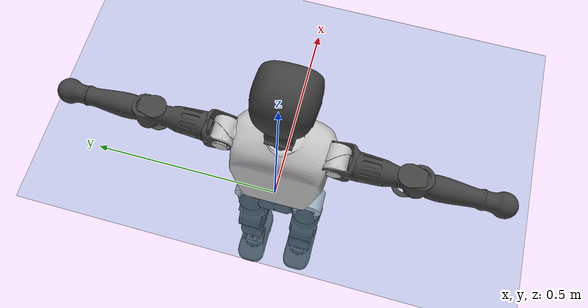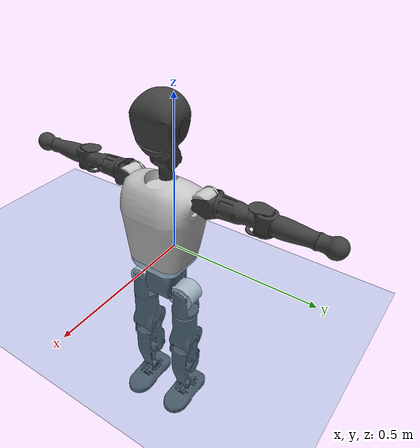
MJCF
<mujoco model="T1">
  <compiler angle="radian" assetdir="assets" balanceinertia="true" inertiafromgeom="false"/>

  <option timestep="0.005" density="1.2" viscosity="2e-05"/>

  <size nkey="1"/>

  <visual>
    <quality shadowsize="8192"/>
    <map shadowclip="0.5"/>
  </visual>

  <default>
    <default class="/">
      <joint armature="0.01" damping="0.01" frictionloss="0.1"/>
      <geom contype="0" conaffinity="0" group="1" solref="-1000 -80"/>
      <site size="0.01 0.005 0.005" group="5"/>
      <general forcelimited="true" biastype="affine" gainprm="25" biasprm="0 -25 -0.6"/>
      <default class="t1">
        <geom rgba="0.25 0.25 0.25 1"/>
        <default class="visual">
          <geom type="mesh" group="2"/>
        </default>
        <default class="collision">
          <geom group="3"/>
        </default>
        <default class="foot">
          <geom size="0.1115 0.05 0.015" type="box" condim="6" group="4" priority="1" solimp="0.015 1 0.015"/>
        </default>
        <default class="reward_collision_sphere">
          <geom group="5" rgba="1 0 0 1"/>
        </default>
      </default>
    </default>
  </default>

  <asset>
    <texture type="skybox" colorspace="auto" name="//unnamed_texture_0" builtin="gradient" rgb1="0.95 0.95 0.95" rgb2="0.95 0.95 0.95" width="100" height="600"/>
    <texture type="2d" colorspace="auto" name="texplane" builtin="checker" rgb1="0.345 0.575 0.748" rgb2="0.345 0.575 0.748" markrgb="1 1 1" width="512" height="512"/>
    <material name="MatPlane" class="/" texture="texplane" texuniform="true" texrepeat="2 2" specular="0.9"/>
    <mesh name="Trunk" class="/" file="Trunk.stl"/>
    <mesh name="H1" class="/" file="H1.stl"/>
    <mesh name="H2" class="/" file="H2.stl"/>
    <mesh name="AL1" class="/" file="AL1.stl"/>
    <mesh name="AL2" class="/" file="AL2.stl"/>
    <mesh name="AL3" class="/" file="AL3.stl"/>
    <mesh name="left_hand_link" class="/" file="left_hand_link.stl"/>
    <mesh name="AR1" class="/" file="AR1.stl"/>
    <mesh name="AR2" class="/" file="AR2.stl"/>
    <mesh name="AR3" class="/" file="AR3.stl"/>
    <mesh name="right_hand_link" class="/" file="right_hand_link.stl"/>
    <mesh name="Waist" class="/" file="Waist.stl"/>
    <mesh name="Hip_Pitch_Left" class="/" file="Hip_Pitch_Left.stl"/>
    <mesh name="Hip_Roll_Left" class="/" file="Hip_Roll_Left.stl"/>
    <mesh name="Hip_Yaw_Left" class="/" file="Hip_Yaw_Left.stl"/>
    <mesh name="Shank_Left" class="/" file="Shank_Left.stl"/>
    <mesh name="Ankle_Cross_Left" class="/" file="Ankle_Cross_Left.stl"/>
    <mesh name="left_foot_link" class="/" file="left_foot_link.stl"/>
    <mesh name="Hip_Pitch_Right" class="/" file="Hip_Pitch_Right.stl"/>
    <mesh name="Hip_Roll_Right" class="/" file="Hip_Roll_Right.stl"/>
    <mesh name="Hip_Yaw_Right" class="/" file="Hip_Yaw_Right.stl"/>
    <mesh name="Shank_Right" class="/" file="Shank_Right.stl"/>
    <mesh name="Ankle_Cross_Right" class="/" file="Ankle_Cross_Right.stl"/>
    <mesh name="right_foot_link" class="/" file="right_foot_link.stl"/>
  </asset>

  <worldbody>
    <geom name="floor" class="/" size="100 100 0.125" type="plane" group="0" material="MatPlane"/>
    <light name="toplight_shadow" class="/" pos="0 0 5" dir="0.0990148 0.0990148 -0.990148" type="directional" ambient="0.04 0.04 0.04" diffuse="0.55 0.55 0.55" specular="0.12 0.12 0.12"/>
    <light name="toplight_fill" class="/" pos="0 0 5" dir="0.0990148 0.0990148 -0.990148" type="directional" castshadow="false" ambient="0.04 0.04 0.04" diffuse="0.3 0.3 0.3" specular="0.08 0.08 0.08"/>
    <body name="trunk" childclass="t1" pos="0.000778827 -0.00267427 0.000951705" quat="1 -0.000138639 -2.9392e-05 6.39071e-05">
      <inertial pos="0.0351294 -0.00153408 0.111535" quat="0.999938 -0.000415754 -0.0110239 -0.00159839" mass="7.1675" diaginertia="0.0117959 0.0266426 0.0852387"/>
      <joint name="//unnamed_joint_0" type="free" armature="0" damping="0" frictionloss="0"/>
      <geom name="//unnamed_geom_1" class="visual" rgba="0.76 0.76 0.76 1" mesh="Trunk"/>
      <geom name="//unnamed_geom_2" class="collision" size="0.0642518 0.0856691 0.128504" pos="0.0400536 0 0.130422" type="box"/>
      <geom name="//unnamed_geom_3" class="reward_collision_sphere" size="0.0985195" pos="0.0400536 0 0.108685"/>
      <geom name="//unnamed_geom_4" class="reward_collision_sphere" size="0.0128504" pos="0.0400536 0.0693315 0"/>
      <geom name="//unnamed_geom_5" class="reward_collision_sphere" size="0.0128504" pos="0.0400536 -0.0693315 0"/>
      <geom name="//unnamed_geom_6" class="reward_collision_sphere" size="0.0128504" pos="0.0400536 0.0872762 0.195633"/>
      <geom name="//unnamed_geom_7" class="reward_collision_sphere" size="0.0128504" pos="0.0400536 -0.0872762 0.195633"/>
      <site name="imu" pos="0.0094727 0.00957391 -0.00940711" size="0.00856691"/>
      <camera name="track" pos="0 -1.63133 0" quat="0.707107 0.707107 0 0" mode="trackcom"/>
      <camera name="ego_camera" pos="0.0814422 0 0.456476" quat="-0.5 -0.5 0.5 0.5"/>
      <body name="H1" pos="0.0375451 0.00232713 0.267222" quat="0.999999 -0.000895336 -0.000893251 0.000328565">
        <inertial pos="-0.00371637 -0.00220862 0.0651072" quat="0.764249 -0.0134197 0.00140149 0.644781" mass="0.291466" diaginertia="3.35312e-05 8.53145e-05 0.000226577"/>
        <joint name="AAHead_yaw" pos="0 0 0" axis="0.00126791 -0.000813357 0.999999" range="-1.61612 1.54953" armature="0.00758899" damping="0.0126914" frictionloss="0.0853"/>
        <geom name="//unnamed_geom_8" class="visual" mesh="H1"/>
        <body name="H2" pos="0.00114459 -0.000565555 0.0656545" quat="1 -0.000318181 0.000487495 -0.000424404">
          <inertial pos="0.00502298 0.000879956 0.106512" quat="0.989276 0.100901 -0.0732116 -0.0761048" mass="0.399053" diaginertia="0.00027265 0.000718796 0.00263952"/>
          <joint name="Head_pitch" pos="0 0 0" axis="0.0116853 -0.999906 0.00714965" range="-1.20462 0.351706" armature="0.00873709" damping="0.0052308" frictionloss="0.0776094"/>
          <geom name="//unnamed_geom_9" class="visual" mesh="H2"/>
          <geom name="//unnamed_geom_10" class="collision" size="0.0685353" pos="0.00667559 0 0.119553"/>
          <geom name="//unnamed_geom_11" class="reward_collision_sphere" size="0.0771022" pos="0.0133512 0 0.108685"/>
        </body>
      </body>
      <body name="AL1" pos="0.0369227 0.0912346 0.238974" quat="1 0.000143703 0.000549548 1.22703e-05">
        <inertial pos="-0.000134093 0.0364713 -0.00289314" quat="0.503988 0.495713 -0.504398 0.49583" mass="0.331761" diaginertia="0.000176938 0.000457694 0.000429056"/>
        <joint name="Left_Shoulder_Pitch" pos="0 0 0" axis="0.00299268 0.999995 0.000349128" stiffness="0.0109728" range="-3.33614 1.16867" armature="0.007928" damping="0.00714908" frictionloss="0.0833234"/>
        <geom name="//unnamed_geom_12" class="visual" rgba="0.76 0.76 0.76 1" mesh="AL1"/>
        <body name="AL2" pos="0.00322811 0.041338 -0.00187349" quat="1 -3.35325e-05 0.000112281 4.42197e-05">
          <inertial pos="0.00502888 0.0283792 -0.000886256" quat="0.483041 0.516273 -0.488757 0.511126" mass="0.103703" diaginertia="5.40836e-05 0.000125581 0.000274526"/>
          <joint name="Left_Shoulder_Roll" pos="0 0 0" axis="-0.999909 -0.0126079 0.00476256" range="-1.554 1.75646" armature="0.0089107" damping="0.0132323" frictionloss="0.0878705"/>
          <geom name="//unnamed_geom_13" class="visual" mesh="AL2"/>
          <body name="AL3" pos="0.000343709 0.0483149 0.00281757" quat="1 0.000269351 -0.000143704 -0.000271483">
            <inertial pos="-0.00292037 0.0698648 -0.000207776" quat="0.704109 0.71009 -0.000623138 -0.00156363" mass="0.624607" diaginertia="0.00173346 0.00456827 0.00094659"/>
            <joint name="Left_Elbow_Pitch" pos="0 0 0" axis="0.00152291 -0.999998 -0.0010414" range="-2.32479 2.24389" armature="0.00846861" damping="0" frictionloss="0.0814214"/>
            <geom name="//unnamed_geom_14" class="visual" mesh="AL3"/>
            <geom name="//unnamed_geom_15" class="collision" size="0.0257007 0.0642518" pos="0 0.0407833 0" quat="0.707105 0.707108 0 0" type="cylinder"/>
            <geom name="//unnamed_geom_16" class="reward_collision_sphere" size="0.0308409"/>
            <body name="left_hand_link" pos="0.000501246 0.122285 0.00234459" quat="1 -0.000139558 0.000323817 -0.00052291">
              <inertial pos="0.000121915 0.0874543 -0.000141976" quat="0.710193 0.703899 0.00374066 0.0117286" mass="0.206297" diaginertia="0.00109247 0.00288078 0.000331559"/>
              <joint name="Left_Elbow_Yaw" pos="0 0 0" axis="0.00276365 -0.00175457 0.999995" range="-2.47029 -0.0403706" armature="0.00963841" damping="0.0234237" frictionloss="0.0857628"/>
              <geom name="//unnamed_geom_17" class="visual" mesh="left_hand_link"/>
              <geom name="//unnamed_geom_18" class="collision" size="0.0257007 0.0749605" pos="0 0.106036 0" quat="0.707105 0.707108 0 0" type="cylinder"/>
              <geom name="//unnamed_geom_19" class="reward_collision_sphere" size="0.0428345"/>
              <geom name="//unnamed_geom_20" class="reward_collision_sphere" size="0.0299842" pos="0 0.0897232 0"/>
              <geom name="//unnamed_geom_21" class="reward_collision_sphere" size="0.0299842" pos="0 0.175368 0"/>
            </body>
          </body>
        </body>
      </body>
      <body name="AR1" pos="0.038527 -0.0815593 0.238555" quat="1 0.000820716 -3.71281e-05 6.04057e-05">
        <inertial pos="-0.00202162 -0.0398037 0.00279857" quat="0.505823 0.492007 -0.506501 0.495509" mass="0.332669" diaginertia="0.000176483 0.000465443 0.000435255"/>
        <joint name="Right_Shoulder_Pitch" pos="0 0 0" axis="-0.00177087 -0.999912 0.0131319" range="-1.18015 3.30396" armature="0.00742258" damping="0.0171248" frictionloss="0.0738203"/>
        <geom name="//unnamed_geom_22" class="visual" rgba="0.76 0.76 0.76 1" mesh="AR1"/>
        <body name="AR2" pos="0.000579549 -0.0375665 0.000385611" quat="1 -0.000270506 -0.000310209 0.00034962">
          <inertial pos="-0.000375147 -0.0285544 -0.000994611" quat="0.50727 0.495636 -0.508672 0.488134" mass="0.0979034" diaginertia="5.20919e-05 0.000125719 0.000262773"/>
          <joint name="Right_Shoulder_Roll" pos="0 0 0" axis="-1 -0.00016978 0.000930773" range="-1.79262 1.51821" armature="0.00845376" damping="0.00247242" frictionloss="0.0830383"/>
          <geom name="//unnamed_geom_23" class="visual" mesh="AR2"/>
          <body name="AR3" pos="-0.00286295 -0.0505225 0.00101269" quat="1 0.000127432 0.000100428 0.000115539">
            <inertial pos="-0.00204363 -0.0703904 0.00319404" quat="0.711142 0.703026 -0.00337482 -0.00448097" mass="0.635806" diaginertia="0.00169741 0.00435423 0.000892642"/>
            <joint name="Right_Elbow_Pitch" pos="0 0 0" axis="-0.0121003 0.999922 0.00314398" range="-2.32394 2.31337" armature="0.00806045" damping="0.0154035" frictionloss="0.0972181"/>
            <geom name="//unnamed_geom_24" class="visual" mesh="AR3"/>
            <geom name="//unnamed_geom_25" class="collision" size="0.0257007 0.0642518" pos="0 -0.0407833 0" quat="0.707105 0.707108 0 0" type="cylinder"/>
            <geom name="//unnamed_geom_26" class="reward_collision_sphere" size="0.0308409"/>
            <body name="right_hand_link" pos="-0.00363118 -0.122103 -4.88248e-05" quat="1 -0.000164485 0.000135062 0.000442489">
              <inertial pos="-0.00126253 -0.0865804 0.000519551" quat="0.705383 0.708824 0.00168261 -0.000102036" mass="0.216063" diaginertia="0.00113035 0.00291116 0.000330703"/>
              <joint name="Right_Elbow_Yaw" pos="0 0 0" axis="0.00147002 0.0010633 0.999998" range="-0.0161554 2.4304" armature="0.00753641" damping="0.0160279" frictionloss="0.0871354"/>
              <geom name="//unnamed_geom_27" class="visual" mesh="right_hand_link"/>
              <geom name="//unnamed_geom_28" class="collision" size="0.0257007 0.0749605" pos="0 -0.106036 0" quat="0.707105 0.707108 0 0" type="cylinder"/>
              <geom name="//unnamed_geom_29" class="reward_collision_sphere" size="0.0428345"/>
              <geom name="//unnamed_geom_30" class="reward_collision_sphere" size="0.0299842" pos="0 -0.0897232 0"/>
              <geom name="//unnamed_geom_31" class="reward_collision_sphere" size="0.0299842" pos="0 -0.175368 0"/>
            </body>
          </body>
        </body>
      </body>
      <body name="Waist" pos="0.042372 1.74117e-05 -0.122559" quat="1 -0.000182869 0.00083339 0.00018418">
        <inertial pos="0.0046801 0.000878156 0.00727049" quat="0.984385 0.00718416 -0.175818 0.00480711" mass="1.55882" diaginertia="0.000670158 0.00179935 0.00686136"/>
        <joint name="Waist" pos="0 0 0" axis="0.0134151 -0.00188554 0.999908" range="-1.62464 1.51541" armature="0.00842614" damping="0.0132066" frictionloss="0.0961227"/>
        <geom name="//unnamed_geom_32" class="visual" mesh="Waist"/>
        <body name="Hip_Pitch_Left" pos="0.00307041 0.083338 -0.000862627" quat="1 0.000619989 0.000175352 0.00043442">
          <inertial pos="-0.00178312 -0.00617927 -0.0198979" quat="0.974683 0.223352 0.00397849 0.00949308" mass="0.619288" diaginertia="0.000231341 0.000507359 0.00184027"/>
          <joint name="Left_Hip_Pitch" pos="0 0 0" axis="0.0130773 0.999874 0.00901285" stiffness="0.0154694" range="-1.77426 1.58116" armature="0.00758587" damping="0.00215153" frictionloss="0.0815714"/>
          <geom name="//unnamed_geom_33" class="visual" rgba="0.76 0.76 0.76 1" mesh="Hip_Pitch_Left"/>
          <body name="Hip_Roll_Left" pos="-0.000342856 -0.00118269 -0.0236402" quat="1 -0.000355693 -0.000468987 -0.000412179">
            <inertial pos="-0.000514272 0.00147801 -0.0591669" quat="0.705276 -0.00464086 -0.00577531 0.708894" mass="0.244758" diaginertia="0.000234715 0.000548801 0.00079108"/>
            <joint name="Left_Hip_Roll" pos="0 0 0" axis="-0.999874 0.00108464 0.0158324" stiffness="0.0014227" range="-1.62335 0.194632" armature="0.00900154" damping="0.021026" frictionloss="0.0872407"/>
            <geom name="//unnamed_geom_34" class="visual" mesh="Hip_Roll_Left"/>
            <geom name="//unnamed_geom_35" class="reward_collision_sphere" size="0.047118"/>
            <body name="Hip_Yaw_Left" pos="0.000278383 -0.000700112 -0.0921483" quat="1 8.35233e-07 4.15823e-06 2.63578e-05">
              <inertial pos="-0.00707401 -0.000372283 -0.0944278" quat="0.694919 -0.0330324 -0.0323994 0.717598" mass="1.38618" diaginertia="0.00364066 0.00954506 0.0041994"/>
              <joint name="Left_Hip_Yaw" pos="0 0 0" axis="-0.00280725 -0.00258977 -0.999993" stiffness="0.00104236" range="-1.03911 0.966894" armature="0.00972647" damping="0.0209945" frictionloss="0.084905"/>
              <geom name="//unnamed_geom_36" class="visual" mesh="Hip_Yaw_Left"/>
              <geom name="//unnamed_geom_37" class="collision" size="0.0428345 0.0685353" type="cylinder"/>
              <body name="Shank_Left" pos="-0.00918999 -0.00252979 -0.145467" quat="0.999999 0.000964178 0.000376093 0.000549943">
                <inertial pos="-0.0055878 0.00107928 -0.135931" quat="0.997146 -0.00449818 -0.0244011 0.0712987" mass="1.05931" diaginertia="0.00450986 0.0117864 0.00266748"/>
                <joint name="Left_Knee_Pitch" pos="0 0 0" axis="-0.00187382 0.999995 0.0026863" range="0.0499643 2.35536" armature="0.00830553" damping="0" frictionloss="0.075239"/>
                <geom name="//unnamed_geom_38" class="visual" mesh="Shank_Left"/>
                <geom name="//unnamed_geom_39" class="collision" size="0.0428345 0.0642518" pos="0 0 -0.130422" type="cylinder"/>
                <geom name="//unnamed_geom_40" class="reward_collision_sphere" size="0.0556849"/>
                <body name="Ankle_Cross_Left" pos="-0.00422568 -0.00324334 -0.30549" quat="0.999999 0.000744517 -0.000658947 -0.000611171">
                  <inertial pos="-0.00206911 -0.000274893 -0.00821678" quat="0.443496 0.550654 0.55051 0.443881" mass="0.0449253" diaginertia="3.96316e-06 9.33546e-06 1.69587e-05"/>
                  <joint name="Left_Ankle_Pitch" pos="0 0 0" axis="0.0039566 0.999989 -0.00263874" stiffness="0.0122935" range="-0.914313 0.387832" armature="0.00844892" damping="0.0222457" frictionloss="0.09623"/>
                  <geom name="//unnamed_geom_41" class="visual" mesh="Ankle_Cross_Left"/>
                  <body name="left_foot_link" pos="-0.003174 0.00228836 -0.0137759" quat="1 -0.000449672 -0.000113457 -0.000288968">
                    <inertial pos="0.000122358 -0.000973594 -0.0125307" quat="0.00283541 0.62991 -0.00437657 0.776651" mass="0.420797" diaginertia="0.000370807 0.000886843 0.0033806"/>
                    <joint name="Left_Ankle_Roll" pos="0 0 0" axis="-1 -2.21646e-05 -7.14278e-05" range="-0.443251 0.448777" armature="0.00978236" damping="0.00845066" frictionloss="0.0864066"/>
                    <geom name="//unnamed_geom_42" class="visual" mesh="left_foot_link"/>
                    <geom name="left_foot" class="foot" size="0.103454 0.0390586 0.0125768" pos="0.00667559 0 -0.0163027"/>
                    <geom name="//unnamed_geom_44" class="reward_collision_sphere" size="0.0445479" pos="0.00667559 0 -0.0163027"/>
                    <geom name="//unnamed_geom_45" class="reward_collision_sphere" size="0.0257007" pos="0.0634181 -0.0187603 -0.0163027"/>
                    <geom name="//unnamed_geom_46" class="reward_collision_sphere" size="0.0257007" pos="-0.0467292 -0.0187603 -0.0163027"/>
                    <site name="left_foot" class="foot" pos="0.00667559 0 -0.0163027" size="0.00856691"/>
                  </body>
                </body>
              </body>
            </body>
          </body>
        </body>
        <body name="Hip_Pitch_Right" pos="0.00368018 -0.0880937 0.00045894" quat="1 -3.42392e-05 7.77089e-05 6.14563e-05">
          <inertial pos="0.00280086 0.0046354 -0.0170618" quat="0.973782 -0.227067 0.0131887 -0.0040154" mass="0.64516" diaginertia="0.000234846 0.000552074 0.00188291"/>
          <joint name="Right_Hip_Pitch" pos="0 0 0" axis="0.000394043 -1 0.000639425" range="-1.62339 1.80229" armature="0.00950704" damping="0.0105806" frictionloss="0.0738304"/>
          <geom name="//unnamed_geom_47" class="visual" rgba="0.76 0.76 0.76 1" mesh="Hip_Pitch_Right"/>
          <body name="Hip_Roll_Right" pos="-0.000650416 -0.000284953 -0.0221719" quat="1 0.000181186 2.43709e-06 1.60949e-05">
            <inertial pos="0.00325175 0.00242135 -0.0564786" quat="0.707781 -0.00315826 -0.00778151 0.706382" mass="0.248427" diaginertia="0.000238972 0.000574393 0.000813325"/>
            <joint name="Right_Hip_Roll" pos="0 0 0" axis="-0.999844 -0.0166272 0.00593313" range="-0.200492 1.5958" armature="0.00909518" damping="0.0102335" frictionloss="0.0888328"/>
            <geom name="//unnamed_geom_48" class="visual" mesh="Hip_Roll_Right"/>
            <geom name="//unnamed_geom_49" class="reward_collision_sphere" size="0.047118"/>
            <body name="Hip_Yaw_Right" pos="-0.000178756 -0.00317832 -0.0879489" quat="1 -6.20163e-05 -0.000401363 -0.000518246">
              <inertial pos="-0.00554649 -0.00250686 -0.0950429" quat="0.711269 -0.0307579 -0.0413379 0.701028" mass="1.41645" diaginertia="0.00347778 0.00945928 0.00399854"/>
              <joint name="Right_Hip_Yaw" pos="0 0 0" axis="-0.008207 0.00346558 -0.99996" stiffness="0.00407621" range="-0.975662 1.03064" armature="0.00791414" damping="0.00210102" frictionloss="0.0852971"/>
              <geom name="//unnamed_geom_50" class="visual" mesh="Hip_Yaw_Right"/>
              <geom name="//unnamed_geom_51" class="collision" size="0.0428345 0.0685353" type="cylinder"/>
              <body name="Shank_Right" pos="-0.00967827 0.000362563 -0.147552" quat="0.999999 -0.00111237 5.05415e-05 -0.000484169">
                <inertial pos="-0.00170868 -0.000574809 -0.131965" quat="0.999178 0.000708109 -0.0237895 -0.0328274" mass="1.04907" diaginertia="0.00456958 0.0122671 0.00296125"/>
                <joint name="Right_Knee_Pitch" pos="0 0 0" axis="0.000324032 -0.999999 0.00133769" stiffness="0.00642125" range="-2.33594 0.0385144" armature="0.0087193" damping="0.00540629" frictionloss="0.0880195"/>
                <geom name="//unnamed_geom_52" class="visual" mesh="Shank_Right"/>
                <geom name="//unnamed_geom_53" class="collision" size="0.0428345 0.0642518" pos="0 0 -0.130422" type="cylinder"/>
                <geom name="//unnamed_geom_54" class="reward_collision_sphere" size="0.0556849"/>
                <body name="Ankle_Cross_Right" pos="0.00501215 0.000273682 -0.303136" quat="1 -8.11417e-05 -5.8202e-05 -0.000217571">
                  <inertial pos="-0.00263623 0.00135468 -0.00742956" quat="0.443098 0.551642 0.550504 0.443058" mass="0.0457652" diaginertia="3.93094e-06 9.17533e-06 1.68285e-05"/>
                  <joint name="Right_Ankle_Pitch" pos="0 0 0" axis="-0.00871423 -0.999962 0.000521321" stiffness="0.0113509" range="-0.310595 0.891952" armature="0.00834085" damping="0.0115627" frictionloss="0.0813372"/>
                  <geom name="//unnamed_geom_55" class="visual" mesh="Ankle_Cross_Right"/>
                  <body name="right_foot_link" pos="0.00208046 -0.00364083 -0.0113027" quat="1 0.000532828 -0.000131586 -4.50371e-05">
                    <inertial pos="0.000274655 0.00116778 -0.00941973" quat="0.00440983 0.624016 0.0120028 0.781307" mass="0.424517" diaginertia="0.000352246 0.000876088 0.00346585"/>
                    <joint name="Right_Ankle_Roll" pos="0 0 0" axis="-0.999953 0.0012561 0.00962802" range="-0.466652 0.389359" armature="0.00851257" damping="0.0131519" frictionloss="0.0901684"/>
                    <geom name="//unnamed_geom_56" class="visual" mesh="right_foot_link"/>
                    <geom name="right_foot" class="foot" size="0.095502 0.0483731 0.0126231" pos="0.00667559 0 -0.0163027"/>
                    <geom name="//unnamed_geom_58" class="reward_collision_sphere" size="0.0342676"/>
                    <geom name="//unnamed_geom_59" class="reward_collision_sphere" size="0.0257007" pos="0.00667559 0 -0.0163027"/>
                    <geom name="//unnamed_geom_60" class="reward_collision_sphere" size="0.0257007" pos="0.0634181 0.0187603 -0.0163027"/>
                    <geom name="//unnamed_geom_61" class="reward_collision_sphere" size="0.0257007" pos="-0.0467292 0.0187603 -0.0163027"/>
                    <site name="right_foot" class="foot" pos="0.00667559 0 -0.0163027" size="0.00856691"/>
                  </body>
                </body>
              </body>
            </body>
          </body>
        </body>
      </body>
    </body>
  </worldbody>

  <contact>
    <pair class="/" geom1="floor" geom2="left_foot" name="//unnamed_contact_0"/>
    <pair class="/" geom1="floor" geom2="right_foot" name="//unnamed_contact_1"/>
  </contact>

  <actuator>
    <general name="AAHead_yaw" class="/" joint="AAHead_yaw" forcerange="-5.44195 5.44195" gainprm="22.0559" biasprm="0 -22.0559 -0.542519"/>
    <general name="Head_pitch" class="/" joint="Head_pitch" forcerange="-6.5684 6.5684" gainprm="22.0559" biasprm="0 -22.0559 -0.542519"/>
    <general name="Left_Shoulder_Pitch" class="/" joint="Left_Shoulder_Pitch" forcerange="-16.5575 16.5575" gainprm="22.0559" biasprm="0 -22.0559 -0.542519"/>
    <general name="Left_Shoulder_Roll" class="/" joint="Left_Shoulder_Roll" forcerange="-15.6937 15.6937" gainprm="22.0559" biasprm="0 -22.0559 -0.542519"/>
    <general name="Left_Elbow_Pitch" class="/" joint="Left_Elbow_Pitch" forcerange="-13.9237 13.9237" gainprm="22.0559" biasprm="0 -22.0559 -0.542519"/>
    <general name="Left_Elbow_Yaw" class="/" joint="Left_Elbow_Yaw" forcerange="-15.9429 15.9429" gainprm="22.0559" biasprm="0 -22.0559 -0.542519"/>
    <general name="Right_Shoulder_Pitch" class="/" joint="Right_Shoulder_Pitch" forcerange="-14.6542 14.6542" gainprm="22.0559" biasprm="0 -22.0559 -0.542519"/>
    <general name="Right_Shoulder_Roll" class="/" joint="Right_Shoulder_Roll" forcerange="-14.8779 14.8779" gainprm="22.0559" biasprm="0 -22.0559 -0.542519"/>
    <general name="Right_Elbow_Pitch" class="/" joint="Right_Elbow_Pitch" forcerange="-13.9894 13.9894" gainprm="22.0559" biasprm="0 -22.0559 -0.542519"/>
    <general name="Right_Elbow_Yaw" class="/" joint="Right_Elbow_Yaw" forcerange="-13.9319 13.9319" gainprm="22.0559" biasprm="0 -22.0559 -0.542519"/>
    <general name="Waist" class="/" joint="Waist" forcerange="-23.3525 23.3525" gainprm="22.0559" biasprm="0 -22.0559 -0.542519"/>
    <general name="Left_Hip_Pitch" class="/" joint="Left_Hip_Pitch" forcerange="-38.947 38.947" gainprm="22.0559" biasprm="0 -22.0559 -0.542519"/>
    <general name="Left_Hip_Roll" class="/" joint="Left_Hip_Roll" forcerange="-23.1654 23.1654" gainprm="22.0559" biasprm="0 -22.0559 -0.542519"/>
    <general name="Left_Hip_Yaw" class="/" joint="Left_Hip_Yaw" forcerange="-23.2081 23.2081" gainprm="22.0559" biasprm="0 -22.0559 -0.542519"/>
    <general name="Left_Knee_Pitch" class="/" joint="Left_Knee_Pitch" forcerange="-56.248 56.248" gainprm="22.0559" biasprm="0 -22.0559 -0.542519"/>
    <general name="Left_Ankle_Pitch" class="/" joint="Left_Ankle_Pitch" forcerange="-16.6555 16.6555" gainprm="22.0559" biasprm="0 -22.0559 -0.542519"/>
    <general name="Left_Ankle_Roll" class="/" joint="Left_Ankle_Roll" forcerange="-12.7591 12.7591" gainprm="22.0559" biasprm="0 -22.0559 -0.542519"/>
    <general name="Right_Hip_Pitch" class="/" joint="Right_Hip_Pitch" forcerange="-37.2774 37.2774" gainprm="22.0559" biasprm="0 -22.0559 -0.542519"/>
    <general name="Right_Hip_Roll" class="/" joint="Right_Hip_Roll" forcerange="-25.8143 25.8143" gainprm="22.0559" biasprm="0 -22.0559 -0.542519"/>
    <general name="Right_Hip_Yaw" class="/" joint="Right_Hip_Yaw" forcerange="-24.2748 24.2748" gainprm="22.0559" biasprm="0 -22.0559 -0.542519"/>
    <general name="Right_Knee_Pitch" class="/" joint="Right_Knee_Pitch" forcerange="-47.3993 47.3993" gainprm="22.0559" biasprm="0 -22.0559 -0.542519"/>
    <general name="Right_Ankle_Pitch" class="/" joint="Right_Ankle_Pitch" forcerange="-17.6997 17.6997" gainprm="22.0559" biasprm="0 -22.0559 -0.542519"/>
    <general name="Right_Ankle_Roll" class="/" joint="Right_Ankle_Roll" forcerange="-13.2619 13.2619" gainprm="22.0559" biasprm="0 -22.0559 -0.542519"/>
  </actuator>

  <sensor>
    <gyro site="imu" name="imu_angular_velocity"/>
    <velocimeter site="imu" name="imu_linear_velocity"/>
    <framelinvel objtype="site" objname="left_foot" name="left_foot_global_linear_velocity"/>
    <framelinvel objtype="site" objname="right_foot" name="right_foot_global_linear_velocity"/>
  </sensor>

  <keyframe>
    <key name="home" qpos="0 0 0.6385 1 0 0 0 0 0 0 1.4 0 -0.4 0 -1.4 0 0.4 0 -0.4 0 0 0.8 -0.4 0 0.4 0 0 -0.8 0.4 0"/>
  </keyframe>
</mujoco>
